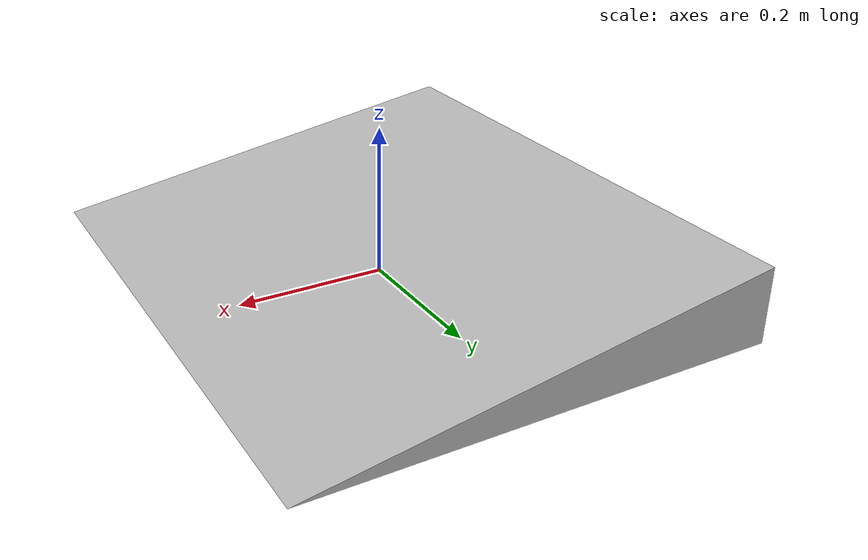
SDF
<?xml version="1.0"?>
<sdf version="1.6">
  <model name="ramp">
    <static>true</static>
    <link name="ramp_link">
      <visual name="body_visual">
      	<geometry>
          <mesh><uri>meshes/ramp.dae</uri></mesh>
        </geometry>
      </visual>
      <collision name="body_collision">
      	<geometry>
          <mesh><uri>meshes/ramp.dae</uri></mesh>
        </geometry>
      </collision>
    </link>
  </model>
</sdf>
